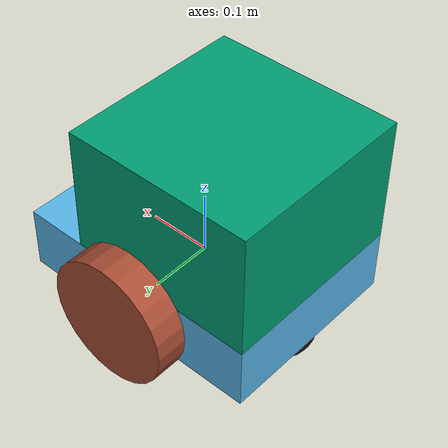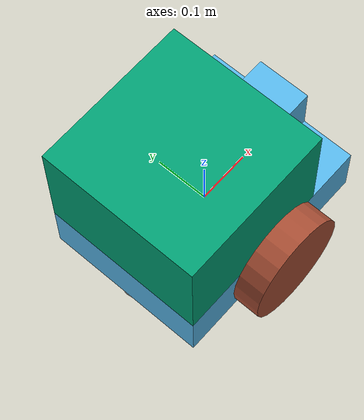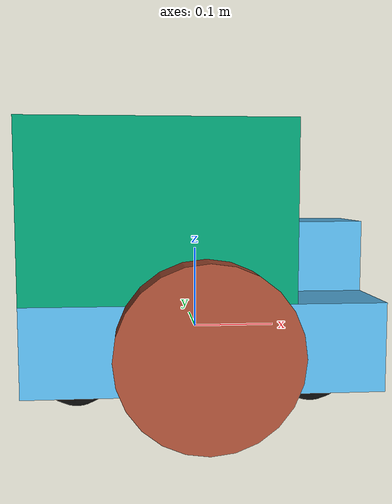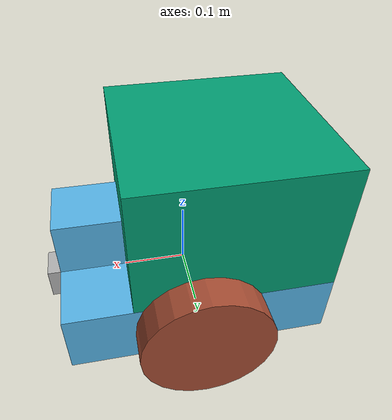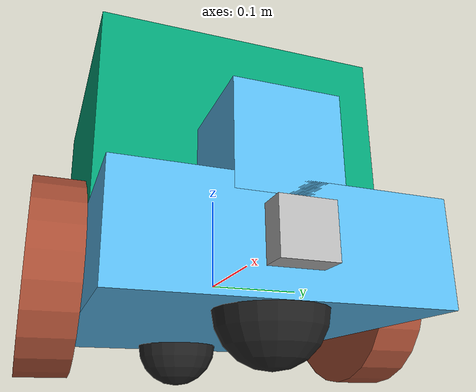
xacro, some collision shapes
<?xml version='1.0'?>
<robot name="my_robot" xmlns:xacro="http://www.ros.org/wiki/xacro">
  <!-- The casters do, however, have friction coefficients defined for them. These friction coefficients are set to 0, to allow for free motion while moving. -->
  <xacro:include filename="$(find my_robot)/urdf/my_robot.gazebo" />

  <link name="robot_footprint"></link>
  <joint name="robot_footprint_joint" type="fixed">
    <origin xyz="0 0 0" rpy="0 0 0"/>
    <parent link="robot_footprint"/>
    <child link="chassis"/>
  </joint>
  <link name='chassis'>
    <pose>0 0 0.1 0 0 0</pose>
    <inertial>
      <mass value="15.0"/>
      <origin xyz="0.0 0 0" rpy=" 0 0 0"/>
      <inertia
          ixx="0.1" ixy="0" ixz="0"
          iyy="0.1" iyz="0"
          izz="0.1"/>
    </inertial>
    <collision name='collision'>
      <origin xyz="0 0 0" rpy=" 0 0 0"/>
      <geometry>
        <box size=".4 .3 .1"/>
      </geometry>
    </collision>
    <visual name='chassis_visual'>
      <origin xyz="0 0 0" rpy=" 0 0 0"/>
      <geometry>
        <box size=".4 .3 .1"/>
      </geometry>
    </visual>
  </link>
  <gazebo reference="chassis">
    <material>Gazebo/Lanes_6</material>
  </gazebo>
  <link name='base'>
    <pose>0 0 0.1 0 0 0</pose>
    <inertial>
      <mass value="1.0"/>
      <origin xyz="0.0 0 0" rpy=" 0 0 0"/>
      <inertia
          ixx="0.1" ixy="0" ixz="0"
          iyy="0.1" iyz="0"
          izz="0.1"/>
    </inertial>
    <collision name='base_collision'>
      <origin xyz="0 0 0" rpy=" 0 0 0"/>
      <geometry>
        <box size=".3 .3 .2"/>
      </geometry>
    </collision>
    <visual name='base_visual'>
      <origin xyz="0 0 0" rpy=" 0 0 0"/>
      <geometry>
        <box size=".3 .3 .2"/>
      </geometry>
    </visual>
  </link>
  <gazebo reference="base">
    <material>Gazebo/Lanes_6</material>
  </gazebo>
  <link name='back_caster'>
    <collision name='back_caster_collision'>
      <origin xyz="-0.15 0 -0.05" rpy=" 0 0 0"/>
      <geometry>
        <sphere radius="0.0499"/>
      </geometry>
    </collision>
    <visual name='back_caster_visual'>
      <origin xyz="-0.15 0 -0.05" rpy=" 0 0 0"/>
      <geometry>
        <sphere radius="0.05"/>
      </geometry>
    </visual>
  </link>
  <gazebo reference="back_caster">
    <material>Gazebo/Black</material>
  </gazebo>
  <link name='front_caster'>
    <collision name='front_caster_collision'>
      <origin xyz="0.15 0 -0.05" rpy=" 0 0 0"/>
      <geometry>
        <sphere radius="0.0499"/>
      </geometry>
    </collision>
    <visual name='front_caster_visual'>
      <origin xyz="0.15 0 -0.05" rpy=" 0 0 0"/>
      <geometry>
        <sphere radius="0.05"/>
      </geometry>
    </visual>
  </link>
  <gazebo reference="front_caster">
    <material>Gazebo/Black</material>
  </gazebo>
  <link name='left_wheel'>
    <pose>0 0 0 0 0 0</pose>
    <inertial>
      <mass value="5.0"/>
      <origin xyz="0.0 0 0" rpy=" 0 1.5707 1.5707"/>
      <inertia
          ixx="0.1" ixy="0" ixz="0"
          iyy="0.1" iyz="0"
          izz="0.1"/>
    </inertial>
    <visual name='left_wheel_visual'>
      <origin xyz="0 0 0" rpy=" 0 1.5707 1.5707"/>
      <geometry>
        <cylinder length="0.05" radius="0.1"/>
      </geometry>
    </visual>
    <collision name='left_wheel_collision'>
      <origin xyz="0 0 0" rpy=" 0 1.5707 1.5707"/>
      <geometry>
        <cylinder length="0.05" radius="0.1"/>
      </geometry>
    </collision>
  </link>
  <gazebo reference="left_wheel">
    <material>Gazebo/Bricks</material>
  </gazebo>
  <link name='right_wheel'>
    <pose>0 0 0 0 0 0</pose>
    <inertial>
      <mass value="5.0"/>
      <origin xyz="0.0 0 0" rpy=" 0 1.5707 1.5707"/>
      <inertia
          ixx="0.1" ixy="0" ixz="0"
          iyy="0.1" iyz="0"
          izz="0.1"/>
    </inertial>
    <visual name='right_wheel_visual'>
      <origin xyz="0 0 0" rpy=" 0 1.5707 1.5707"/>
      <geometry>
        <cylinder length="0.05" radius="0.1"/>
      </geometry>
    </visual>
    <collision name='right_wheel_collision'>
      <origin xyz="0 0 0" rpy=" 0 1.5707 1.5707"/>
      <geometry>
        <cylinder length="0.05" radius="0.1"/>
      </geometry>
    </collision>
  </link>
  <gazebo reference="right_wheel">
    <material>Gazebo/Bricks</material>
  </gazebo>
  <joint name="chassis_base_joint" type="fixed">
    <origin xyz="-0.05 0 0.15" rpy="0 0 0"/>
    <parent link="chassis"/>
    <child link="base"/>
  </joint>
  <joint name="chassis_back_caster_joint" type="fixed">
    <origin xyz="0 0 0" rpy="0 0 0"/>
    <parent link="chassis"/>
    <child link="back_caster"/>
  </joint>
  <joint name="chassis_front_caster_joint" type="fixed">
    <origin xyz="0 0 0" rpy="0 0 0"/>
    <parent link="chassis"/>
    <child link="front_caster"/>
  </joint>
  <joint type="continuous" name="left_wheel_hinge">
    <origin xyz="0 0.175 0" rpy="0 0 0"/>
    <child link="left_wheel"/>
    <parent link="chassis"/>
    <axis xyz="0 1 0" rpy="0 0 0"/>
    <limit effort="10000" velocity="1000"/>
    <dynamics damping="1.0" friction="1.0"/>
  </joint>
  <joint type="continuous" name="right_wheel_hinge">
    <origin xyz="0 -0.175 0" rpy="0 0 0"/>
    <child link="right_wheel"/>
    <parent link="chassis"/>
    <axis xyz="0 1 0" rpy="0 0 0"/>
    <limit effort="10000" velocity="1000"/>
    <dynamics damping="1.0" friction="1.0"/>
  </joint>
  <link name='camera'>
    <pose>0 0 0 0 0 0</pose>
    <inertial>
      <mass value="0.1"/>
      <origin xyz="0.05 0.05 0.05" rpy=" 0 0 0"/>
      <inertia ixx="1e-6" ixy="0" ixz="0" iyy="1e-6" iyz="0" izz="1e-6"/>
    </inertial>
    <visual name='camera_visual'>
      <origin xyz="0 0 0" rpy=" 0 1.5707 1.5707"/>
      <geometry>
        <box size="0.05 0.05 0.05"/>
      </geometry>
    </visual>
    <collision name='camera_collision'>
      <origin xyz="0 0 0" rpy=" 0 1.5707 1.5707"/>
      <geometry>
        <box size="0.05 0.05 0.05"/>
      </geometry>
    </collision>
  </link>
  <gazebo reference="camera">
    <material>Gazebo/GaussianCameraNoise</material>
  </gazebo>
  <link name="camera_link_optical"/>
  <joint name="camera_optical_joint" type="fixed">
    <origin xyz="0 0 0" rpy="-1.5707 0 -1.5707"/>
    <parent link="camera"/>
    <child link="camera_link_optical"/>
  </joint>
  <joint type="fixed" name="camera_joint">
    <origin xyz="0.2 0 0" rpy="0 0 0"/>
    <child link="camera"/>
    <parent link="chassis"/>
    <axis xyz="0 1 0" rpy="0 0 0"/>
  </joint>
  <link name='hokuyo'>
    <pose>0 0 0 0 0 0</pose>
    <inertial>
      <mass value="1e-5"/>
      <origin xyz="0.05 0.05 0.05" rpy=" 0 0 0"/>
      <inertia ixx="1e-6" ixy="0" ixz="0" iyy="1e-6" iyz="0" izz="1e-6"/>
    </inertial>
    <visual name='hokuyo_visual'>
      <origin xyz="0 0 0" rpy=" 0 0 0"/>
      <geometry>
        <mesh filename="package://my_robot/meshes/hokuyo.dae"/>
      </geometry>
    </visual>
    <collision name='hokuyo_collision'>
      <origin xyz="0 0 0" rpy=" 0 0 0"/>
      <geometry>
        <box size="0.1 0.1 0.1"/>
      </geometry>
    </collision>
  </link>
  <joint type="fixed" name="hokuyo_joint">
    <origin xyz="0.15 0 0.085" rpy="0 0 0"/>
    <child link="hokuyo"/>
    <parent link="chassis"/>
    <axis xyz="0 1 0" rpy="0 0 0"/>
  </joint>
</robot>
